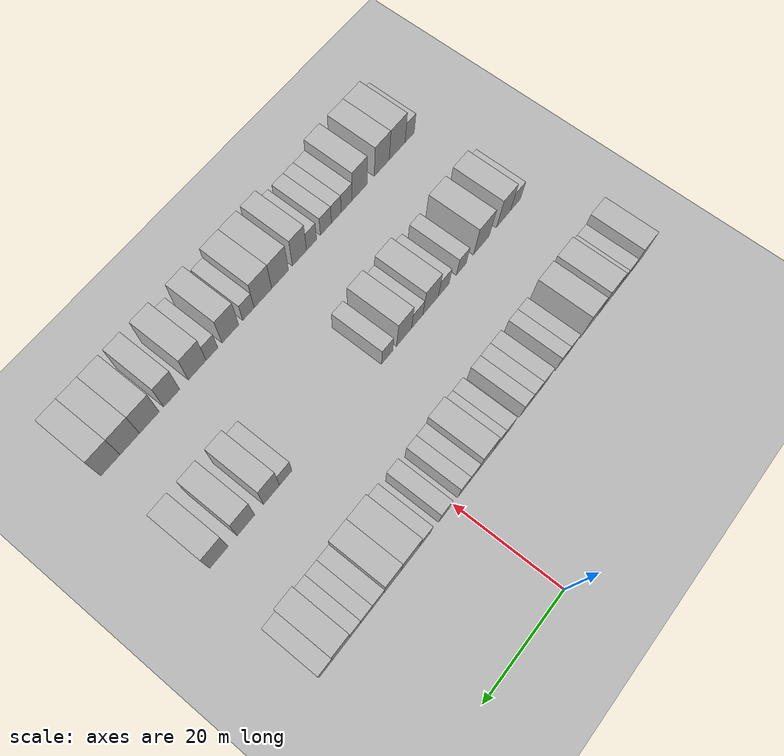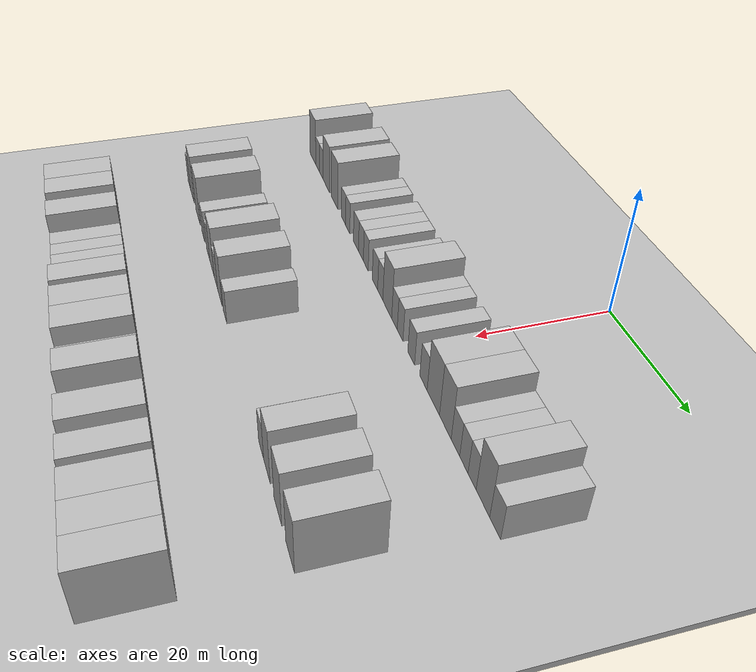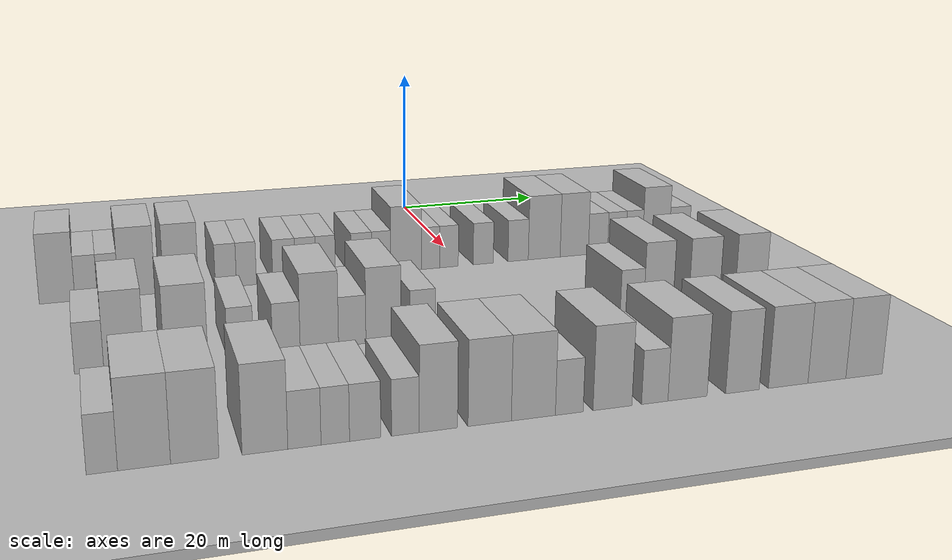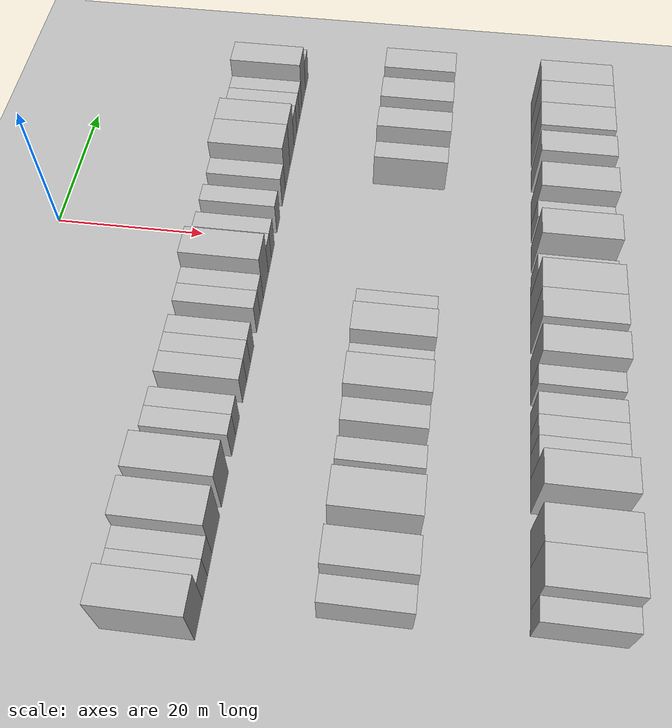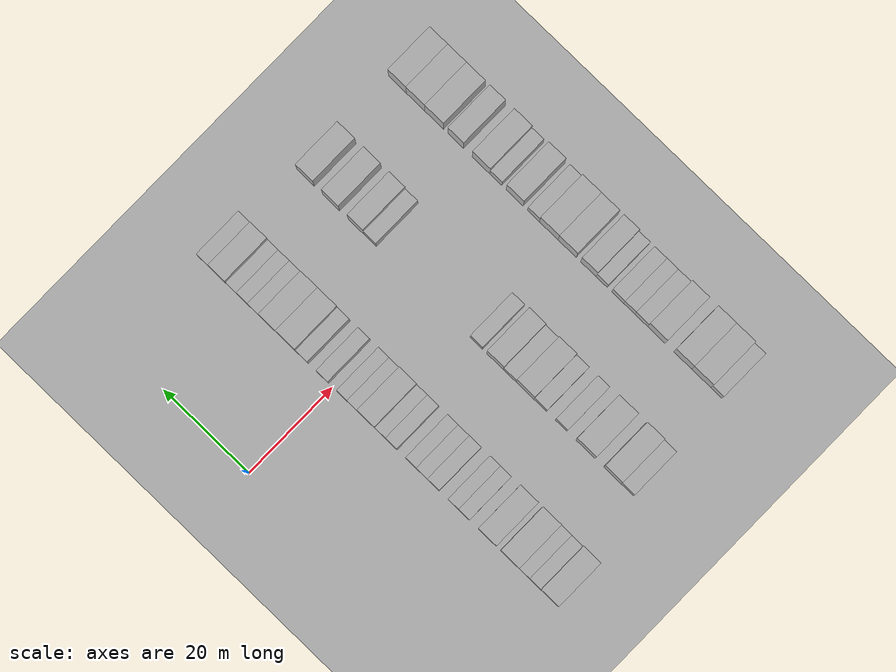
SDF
<sdf version="1.6">
 <world name="default">
  <include><name>ground_plane_1</name><uri>model://HANNAS_ground_plane</uri></include>
  <include>
   <name>ground_plane_2</name>
   <uri>model://HANNAS_ground_plane</uri>
   <pose>100 0 0  0 0 0</pose>
  </include>
  <model name="building_51">
   <static>1</static>
   <pose>25.0000 -50.3097 0 0.000000 0.000000 0.000000</pose>
   <link name="link">
    <pose>0 0 4.50 0 0 0</pose>
    <collision name="collision"><geometry><box><size>10.0000 4.0326 9.0000</size></box></geometry></collision>
    <visual name="visual">
     <cast_shadows>0</cast_shadows>
     <geometry><box><size>10.0000 4.0326 9.0000</size></box></geometry>
     <material>
      <script>
       <uri>model://HANNAS_wall/materials/scripts</uri>
       <uri>model://HANNAS_wall/materials/textures</uri>
       <name>vrc/HANNAS_wall</name>
      </script>
     </material>
    </visual>
   </link>
  </model>
  <model name="building_52">
   <static>1</static>
   <pose>25.0000 -47.0149 0 0.000000 0.000000 0.000000</pose>
   <link name="link">
    <pose>0 0 3.00 0 0 0</pose>
    <collision name="collision"><geometry><box><size>10.0000 2.5572 6.0000</size></box></geometry></collision>
    <visual name="visual">
     <cast_shadows>0</cast_shadows>
     <geometry><box><size>10.0000 2.5572 6.0000</size></box></geometry>
     <material>
      <script>
       <uri>model://HANNAS_wall/materials/scripts</uri>
       <uri>model://HANNAS_wall/materials/textures</uri>
       <name>vrc/HANNAS_wall</name>
      </script>
     </material>
    </visual>
   </link>
  </model>
  <model name="building_53">
   <static>1</static>
   <pose>25.0000 -44.5212 0 0.000000 0.000000 0.000000</pose>
   <link name="link">
    <pose>0 0 3.00 0 0 0</pose>
    <collision name="collision"><geometry><box><size>10.0000 2.4300 6.0000</size></box></geometry></collision>
    <visual name="visual">
     <cast_shadows>0</cast_shadows>
     <geometry><box><size>10.0000 2.4300 6.0000</size></box></geometry>
     <material>
      <script>
       <uri>model://HANNAS_wall/materials/scripts</uri>
       <uri>model://HANNAS_wall/materials/textures</uri>
       <name>vrc/HANNAS_wall</name>
      </script>
     </material>
    </visual>
   </link>
  </model>
  <model name="building_54">
   <static>1</static>
   <pose>25.0000 -41.1703 0 0.000000 0.000000 0.000000</pose>
   <link name="link">
    <pose>0 0 4.50 0 0 0</pose>
    <collision name="collision"><geometry><box><size>10.0000 4.2718 9.0000</size></box></geometry></collision>
    <visual name="visual">
     <cast_shadows>0</cast_shadows>
     <geometry><box><size>10.0000 4.2718 9.0000</size></box></geometry>
     <material>
      <script>
       <uri>model://HANNAS_wall/materials/scripts</uri>
       <uri>model://HANNAS_wall/materials/textures</uri>
       <name>vrc/HANNAS_wall</name>
      </script>
     </material>
    </visual>
   </link>
  </model>
  <model name="building_55">
   <static>1</static>
   <pose>25.0000 -35.9543 0 0.000000 0.000000 0.000000</pose>
   <link name="link">
    <pose>0 0 4.50 0 0 0</pose>
    <collision name="collision"><geometry><box><size>10.0000 4.1602 9.0000</size></box></geometry></collision>
    <visual name="visual">
     <cast_shadows>0</cast_shadows>
     <geometry><box><size>10.0000 4.1602 9.0000</size></box></geometry>
     <material>
      <script>
       <uri>model://HANNAS_wall/materials/scripts</uri>
       <uri>model://HANNAS_wall/materials/textures</uri>
       <name>vrc/HANNAS_wall</name>
      </script>
     </material>
    </visual>
   </link>
  </model>
  <model name="building_56">
   <static>1</static>
   <pose>25.0000 -30.5991 0 0.000000 0.000000 0.000000</pose>
   <link name="link">
    <pose>0 0 3.00 0 0 0</pose>
    <collision name="collision"><geometry><box><size>10.0000 2.5501 6.0000</size></box></geometry></collision>
    <visual name="visual">
     <cast_shadows>0</cast_shadows>
     <geometry><box><size>10.0000 2.5501 6.0000</size></box></geometry>
     <material>
      <script>
       <uri>model://HANNAS_wall/materials/scripts</uri>
       <uri>model://HANNAS_wall/materials/textures</uri>
       <name>vrc/HANNAS_wall</name>
      </script>
     </material>
    </visual>
   </link>
  </model>
  <model name="building_57">
   <static>1</static>
   <pose>25.0000 -28.1071 0 0.000000 0.000000 0.000000</pose>
   <link name="link">
    <pose>0 0 3.00 0 0 0</pose>
    <collision name="collision"><geometry><box><size>10.0000 2.4339 6.0000</size></box></geometry></collision>
    <visual name="visual">
     <cast_shadows>0</cast_shadows>
     <geometry><box><size>10.0000 2.4339 6.0000</size></box></geometry>
     <material>
      <script>
       <uri>model://HANNAS_wall/materials/scripts</uri>
       <uri>model://HANNAS_wall/materials/textures</uri>
       <name>vrc/HANNAS_wall</name>
      </script>
     </material>
    </visual>
   </link>
  </model>
  <model name="building_58">
   <static>1</static>
   <pose>25.0000 -23.5045 0 0.000000 0.000000 0.000000</pose>
   <link name="link">
    <pose>0 0 3.00 0 0 0</pose>
    <collision name="collision"><geometry><box><size>10.0000 2.7713 6.0000</size></box></geometry></collision>
    <visual name="visual">
     <cast_shadows>0</cast_shadows>
     <geometry><box><size>10.0000 2.7713 6.0000</size></box></geometry>
     <material>
      <script>
       <uri>model://HANNAS_wall/materials/scripts</uri>
       <uri>model://HANNAS_wall/materials/textures</uri>
       <name>vrc/HANNAS_wall</name>
      </script>
     </material>
    </visual>
   </link>
  </model>
  <model name="building_59">
   <static>1</static>
   <pose>25.0000 -20.8307 0 0.000000 0.000000 0.000000</pose>
   <link name="link">
    <pose>0 0 3.00 0 0 0</pose>
    <collision name="collision"><geometry><box><size>10.0000 2.5764 6.0000</size></box></geometry></collision>
    <visual name="visual">
     <cast_shadows>0</cast_shadows>
     <geometry><box><size>10.0000 2.5764 6.0000</size></box></geometry>
     <material>
      <script>
       <uri>model://HANNAS_wall/materials/scripts</uri>
       <uri>model://HANNAS_wall/materials/textures</uri>
       <name>vrc/HANNAS_wall</name>
      </script>
     </material>
    </visual>
   </link>
  </model>
  <model name="building_60">
   <static>1</static>
   <pose>25.0000 -18.3024 0 0.000000 0.000000 0.000000</pose>
   <link name="link">
    <pose>0 0 3.00 0 0 0</pose>
    <collision name="collision"><geometry><box><size>10.0000 2.4802 6.0000</size></box></geometry></collision>
    <visual name="visual">
     <cast_shadows>0</cast_shadows>
     <geometry><box><size>10.0000 2.4802 6.0000</size></box></geometry>
     <material>
      <script>
       <uri>model://HANNAS_wall/materials/scripts</uri>
       <uri>model://HANNAS_wall/materials/textures</uri>
       <name>vrc/HANNAS_wall</name>
      </script>
     </material>
    </visual>
   </link>
  </model>
  <model name="building_61">
   <static>1</static>
   <pose>25.0000 -13.7433 0 0.000000 0.000000 0.000000</pose>
   <link name="link">
    <pose>0 0 3.00 0 0 0</pose>
    <collision name="collision"><geometry><box><size>10.0000 2.6382 6.0000</size></box></geometry></collision>
    <visual name="visual">
     <cast_shadows>0</cast_shadows>
     <geometry><box><size>10.0000 2.6382 6.0000</size></box></geometry>
     <material>
      <script>
       <uri>model://HANNAS_wall/materials/scripts</uri>
       <uri>model://HANNAS_wall/materials/textures</uri>
       <name>vrc/HANNAS_wall</name>
      </script>
     </material>
    </visual>
   </link>
  </model>
  <model name="building_62">
   <static>1</static>
   <pose>25.0000 -11.1985 0 0.000000 0.000000 0.000000</pose>
   <link name="link">
    <pose>0 0 3.00 0 0 0</pose>
    <collision name="collision"><geometry><box><size>10.0000 2.4514 6.0000</size></box></geometry></collision>
    <visual name="visual">
     <cast_shadows>0</cast_shadows>
     <geometry><box><size>10.0000 2.4514 6.0000</size></box></geometry>
     <material>
      <script>
       <uri>model://HANNAS_wall/materials/scripts</uri>
       <uri>model://HANNAS_wall/materials/textures</uri>
       <name>vrc/HANNAS_wall</name>
      </script>
     </material>
    </visual>
   </link>
  </model>
  <model name="building_63">
   <static>1</static>
   <pose>25.0000 -7.9587 0 0.000000 0.000000 0.000000</pose>
   <link name="link">
    <pose>0 0 4.50 0 0 0</pose>
    <collision name="collision"><geometry><box><size>10.0000 4.0282 9.0000</size></box></geometry></collision>
    <visual name="visual">
     <cast_shadows>0</cast_shadows>
     <geometry><box><size>10.0000 4.0282 9.0000</size></box></geometry>
     <material>
      <script>
       <uri>model://HANNAS_wall/materials/scripts</uri>
       <uri>model://HANNAS_wall/materials/textures</uri>
       <name>vrc/HANNAS_wall</name>
      </script>
     </material>
    </visual>
   </link>
  </model>
  <model name="building_64">
   <static>1</static>
   <pose>25.0000 -4.7389 0 0.000000 0.000000 0.000000</pose>
   <link name="link">
    <pose>0 0 3.00 0 0 0</pose>
    <collision name="collision"><geometry><box><size>10.0000 2.4114 6.0000</size></box></geometry></collision>
    <visual name="visual">
     <cast_shadows>0</cast_shadows>
     <geometry><box><size>10.0000 2.4114 6.0000</size></box></geometry>
     <material>
      <script>
       <uri>model://HANNAS_wall/materials/scripts</uri>
       <uri>model://HANNAS_wall/materials/textures</uri>
       <name>vrc/HANNAS_wall</name>
      </script>
     </material>
    </visual>
   </link>
  </model>
  <model name="building_65">
   <static>1</static>
   <pose>25.0000 -2.3086 0 0.000000 0.000000 0.000000</pose>
   <link name="link">
    <pose>0 0 3.00 0 0 0</pose>
    <collision name="collision"><geometry><box><size>10.0000 2.4492 6.0000</size></box></geometry></collision>
    <visual name="visual">
     <cast_shadows>0</cast_shadows>
     <geometry><box><size>10.0000 2.4492 6.0000</size></box></geometry>
     <material>
      <script>
       <uri>model://HANNAS_wall/materials/scripts</uri>
       <uri>model://HANNAS_wall/materials/textures</uri>
       <name>vrc/HANNAS_wall</name>
      </script>
     </material>
    </visual>
   </link>
  </model>
  <model name="building_66">
   <static>1</static>
   <pose>25.0000 2.2780 0 0.000000 0.000000 0.000000</pose>
   <link name="link">
    <pose>0 0 3.00 0 0 0</pose>
    <collision name="collision"><geometry><box><size>10.0000 2.7241 6.0000</size></box></geometry></collision>
    <visual name="visual">
     <cast_shadows>0</cast_shadows>
     <geometry><box><size>10.0000 2.7241 6.0000</size></box></geometry>
     <material>
      <script>
       <uri>model://HANNAS_wall/materials/scripts</uri>
       <uri>model://HANNAS_wall/materials/textures</uri>
       <name>vrc/HANNAS_wall</name>
      </script>
     </material>
    </visual>
   </link>
  </model>
  <model name="building_67">
   <static>1</static>
   <pose>25.0000 7.0333 0 0.000000 0.000000 0.000000</pose>
   <link name="link">
    <pose>0 0 3.00 0 0 0</pose>
    <collision name="collision"><geometry><box><size>10.0000 2.7864 6.0000</size></box></geometry></collision>
    <visual name="visual">
     <cast_shadows>0</cast_shadows>
     <geometry><box><size>10.0000 2.7864 6.0000</size></box></geometry>
     <material>
      <script>
       <uri>model://HANNAS_wall/materials/scripts</uri>
       <uri>model://HANNAS_wall/materials/textures</uri>
       <name>vrc/HANNAS_wall</name>
      </script>
     </material>
    </visual>
   </link>
  </model>
  <model name="building_68">
   <static>1</static>
   <pose>25.0000 10.6391 0 0.000000 0.000000 0.000000</pose>
   <link name="link">
    <pose>0 0 4.50 0 0 0</pose>
    <collision name="collision"><geometry><box><size>10.0000 4.4251 9.0000</size></box></geometry></collision>
    <visual name="visual">
     <cast_shadows>0</cast_shadows>
     <geometry><box><size>10.0000 4.4251 9.0000</size></box></geometry>
     <material>
      <script>
       <uri>model://HANNAS_wall/materials/scripts</uri>
       <uri>model://HANNAS_wall/materials/textures</uri>
       <name>vrc/HANNAS_wall</name>
      </script>
     </material>
    </visual>
   </link>
  </model>
  <model name="building_69">
   <static>1</static>
   <pose>25.0000 14.8348 0 0.000000 0.000000 0.000000</pose>
   <link name="link">
    <pose>0 0 4.50 0 0 0</pose>
    <collision name="collision"><geometry><box><size>10.0000 3.9664 9.0000</size></box></geometry></collision>
    <visual name="visual">
     <cast_shadows>0</cast_shadows>
     <geometry><box><size>10.0000 3.9664 9.0000</size></box></geometry>
     <material>
      <script>
       <uri>model://HANNAS_wall/materials/scripts</uri>
       <uri>model://HANNAS_wall/materials/textures</uri>
       <name>vrc/HANNAS_wall</name>
      </script>
     </material>
    </visual>
   </link>
  </model>
  <model name="building_70">
   <static>1</static>
   <pose>25.0000 18.1874 0 0.000000 0.000000 0.000000</pose>
   <link name="link">
    <pose>0 0 3.00 0 0 0</pose>
    <collision name="collision"><geometry><box><size>10.0000 2.7388 6.0000</size></box></geometry></collision>
    <visual name="visual">
     <cast_shadows>0</cast_shadows>
     <geometry><box><size>10.0000 2.7388 6.0000</size></box></geometry>
     <material>
      <script>
       <uri>model://HANNAS_wall/materials/scripts</uri>
       <uri>model://HANNAS_wall/materials/textures</uri>
       <name>vrc/HANNAS_wall</name>
      </script>
     </material>
    </visual>
   </link>
  </model>
  <model name="building_71">
   <static>1</static>
   <pose>25.0000 20.8497 0 0.000000 0.000000 0.000000</pose>
   <link name="link">
    <pose>0 0 3.00 0 0 0</pose>
    <collision name="collision"><geometry><box><size>10.0000 2.5858 6.0000</size></box></geometry></collision>
    <visual name="visual">
     <cast_shadows>0</cast_shadows>
     <geometry><box><size>10.0000 2.5858 6.0000</size></box></geometry>
     <material>
      <script>
       <uri>model://HANNAS_wall/materials/scripts</uri>
       <uri>model://HANNAS_wall/materials/textures</uri>
       <name>vrc/HANNAS_wall</name>
      </script>
     </material>
    </visual>
   </link>
  </model>
  <model name="building_72">
   <static>1</static>
   <pose>25.0000 23.3550 0 0.000000 0.000000 0.000000</pose>
   <link name="link">
    <pose>0 0 3.00 0 0 0</pose>
    <collision name="collision"><geometry><box><size>10.0000 2.4249 6.0000</size></box></geometry></collision>
    <visual name="visual">
     <cast_shadows>0</cast_shadows>
     <geometry><box><size>10.0000 2.4249 6.0000</size></box></geometry>
     <material>
      <script>
       <uri>model://HANNAS_wall/materials/scripts</uri>
       <uri>model://HANNAS_wall/materials/textures</uri>
       <name>vrc/HANNAS_wall</name>
      </script>
     </material>
    </visual>
   </link>
  </model>
  <model name="building_73">
   <static>1</static>
   <pose>25.0000 26.5085 0 0.000000 0.000000 0.000000</pose>
   <link name="link">
    <pose>0 0 4.50 0 0 0</pose>
    <collision name="collision"><geometry><box><size>10.0000 3.8821 9.0000</size></box></geometry></collision>
    <visual name="visual">
     <cast_shadows>0</cast_shadows>
     <geometry><box><size>10.0000 3.8821 9.0000</size></box></geometry>
     <material>
      <script>
       <uri>model://HANNAS_wall/materials/scripts</uri>
       <uri>model://HANNAS_wall/materials/textures</uri>
       <name>vrc/HANNAS_wall</name>
      </script>
     </material>
    </visual>
   </link>
  </model>
  <model name="building_74">
   <static>1</static>
   <pose>25.0000 29.9336 0 0.000000 0.000000 0.000000</pose>
   <link name="link">
    <pose>0 0 3.00 0 0 0</pose>
    <collision name="collision"><geometry><box><size>10.0000 2.9679 6.0000</size></box></geometry></collision>
    <visual name="visual">
     <cast_shadows>0</cast_shadows>
     <geometry><box><size>10.0000 2.9679 6.0000</size></box></geometry>
     <material>
      <script>
       <uri>model://HANNAS_wall/materials/scripts</uri>
       <uri>model://HANNAS_wall/materials/textures</uri>
       <name>vrc/HANNAS_wall</name>
      </script>
     </material>
    </visual>
   </link>
  </model>
  <model name="building_182">
   <static>1</static>
   <pose>47.0000 -47.1529 0 0.000000 0.000000 0.000000</pose>
   <link name="link">
    <pose>0 0 3.00 0 0 0</pose>
    <collision name="collision"><geometry><box><size>10.0000 2.8951 6.0000</size></box></geometry></collision>
    <visual name="visual">
     <cast_shadows>0</cast_shadows>
     <geometry><box><size>10.0000 2.8951 6.0000</size></box></geometry>
     <material>
      <script>
       <uri>model://HANNAS_wall/materials/scripts</uri>
       <uri>model://HANNAS_wall/materials/textures</uri>
       <name>vrc/HANNAS_wall</name>
      </script>
     </material>
    </visual>
   </link>
  </model>
  <model name="building_183">
   <static>1</static>
   <pose>47.0000 -43.6938 0 0.000000 0.000000 0.000000</pose>
   <link name="link">
    <pose>0 0 4.50 0 0 0</pose>
    <collision name="collision"><geometry><box><size>10.0000 4.0230 9.0000</size></box></geometry></collision>
    <visual name="visual">
     <cast_shadows>0</cast_shadows>
     <geometry><box><size>10.0000 4.0230 9.0000</size></box></geometry>
     <material>
      <script>
       <uri>model://HANNAS_wall/materials/scripts</uri>
       <uri>model://HANNAS_wall/materials/textures</uri>
       <name>vrc/HANNAS_wall</name>
      </script>
     </material>
    </visual>
   </link>
  </model>
  <model name="building_184">
   <static>1</static>
   <pose>47.0000 -37.4510 0 0.000000 0.000000 0.000000</pose>
   <link name="link">
    <pose>0 0 4.50 0 0 0</pose>
    <collision name="collision"><geometry><box><size>10.0000 4.4626 9.0000</size></box></geometry></collision>
    <visual name="visual">
     <cast_shadows>0</cast_shadows>
     <geometry><box><size>10.0000 4.4626 9.0000</size></box></geometry>
     <material>
      <script>
       <uri>model://HANNAS_wall/materials/scripts</uri>
       <uri>model://HANNAS_wall/materials/textures</uri>
       <name>vrc/HANNAS_wall</name>
      </script>
     </material>
    </visual>
   </link>
  </model>
  <model name="building_185">
   <static>1</static>
   <pose>47.0000 -31.8492 0 0.000000 0.000000 0.000000</pose>
   <link name="link">
    <pose>0 0 3.00 0 0 0</pose>
    <collision name="collision"><geometry><box><size>10.0000 2.7410 6.0000</size></box></geometry></collision>
    <visual name="visual">
     <cast_shadows>0</cast_shadows>
     <geometry><box><size>10.0000 2.7410 6.0000</size></box></geometry>
     <material>
      <script>
       <uri>model://HANNAS_wall/materials/scripts</uri>
       <uri>model://HANNAS_wall/materials/textures</uri>
       <name>vrc/HANNAS_wall</name>
      </script>
     </material>
    </visual>
   </link>
  </model>
  <model name="building_186">
   <static>1</static>
   <pose>47.0000 -27.0108 0 0.000000 0.000000 0.000000</pose>
   <link name="link">
    <pose>0 0 3.00 0 0 0</pose>
    <collision name="collision"><geometry><box><size>10.0000 2.9359 6.0000</size></box></geometry></collision>
    <visual name="visual">
     <cast_shadows>0</cast_shadows>
     <geometry><box><size>10.0000 2.9359 6.0000</size></box></geometry>
     <material>
      <script>
       <uri>model://HANNAS_wall/materials/scripts</uri>
       <uri>model://HANNAS_wall/materials/textures</uri>
       <name>vrc/HANNAS_wall</name>
      </script>
     </material>
    </visual>
   </link>
  </model>
  <model name="building_187">
   <static>1</static>
   <pose>47.0000 -23.4751 0 0.000000 0.000000 0.000000</pose>
   <link name="link">
    <pose>0 0 4.50 0 0 0</pose>
    <collision name="collision"><geometry><box><size>10.0000 4.1356 9.0000</size></box></geometry></collision>
    <visual name="visual">
     <cast_shadows>0</cast_shadows>
     <geometry><box><size>10.0000 4.1356 9.0000</size></box></geometry>
     <material>
      <script>
       <uri>model://HANNAS_wall/materials/scripts</uri>
       <uri>model://HANNAS_wall/materials/textures</uri>
       <name>vrc/HANNAS_wall</name>
      </script>
     </material>
    </visual>
   </link>
  </model>
  <model name="building_188">
   <static>1</static>
   <pose>47.0000 -19.9073 0 0.000000 0.000000 0.000000</pose>
   <link name="link">
    <pose>0 0 3.00 0 0 0</pose>
    <collision name="collision"><geometry><box><size>10.0000 3.0000 6.0000</size></box></geometry></collision>
    <visual name="visual">
     <cast_shadows>0</cast_shadows>
     <geometry><box><size>10.0000 3.0000 6.0000</size></box></geometry>
     <material>
      <script>
       <uri>model://HANNAS_wall/materials/scripts</uri>
       <uri>model://HANNAS_wall/materials/textures</uri>
       <name>vrc/HANNAS_wall</name>
      </script>
     </material>
    </visual>
   </link>
  </model>
  <model name="building_189">
   <static>1</static>
   <pose>47.0000 -16.4712 0 0.000000 0.000000 0.000000</pose>
   <link name="link">
    <pose>0 0 4.50 0 0 0</pose>
    <collision name="collision"><geometry><box><size>10.0000 3.8722 9.0000</size></box></geometry></collision>
    <visual name="visual">
     <cast_shadows>0</cast_shadows>
     <geometry><box><size>10.0000 3.8722 9.0000</size></box></geometry>
     <material>
      <script>
       <uri>model://HANNAS_wall/materials/scripts</uri>
       <uri>model://HANNAS_wall/materials/textures</uri>
       <name>vrc/HANNAS_wall</name>
      </script>
     </material>
    </visual>
   </link>
  </model>
  <model name="building_190">
   <static>1</static>
   <pose>47.0000 -12.1024 0 0.000000 0.000000 0.000000</pose>
   <link name="link">
    <pose>0 0 3.00 0 0 0</pose>
    <collision name="collision"><geometry><box><size>10.0000 2.8652 6.0000</size></box></geometry></collision>
    <visual name="visual">
     <cast_shadows>0</cast_shadows>
     <geometry><box><size>10.0000 2.8652 6.0000</size></box></geometry>
     <material>
      <script>
       <uri>model://HANNAS_wall/materials/scripts</uri>
       <uri>model://HANNAS_wall/materials/textures</uri>
       <name>vrc/HANNAS_wall</name>
      </script>
     </material>
    </visual>
   </link>
  </model>
  <model name="building_191">
   <static>1</static>
   <pose>47.0000 12.6779 0 0.000000 0.000000 0.000000</pose>
   <link name="link">
    <pose>0 0 3.00 0 0 0</pose>
    <collision name="collision"><geometry><box><size>10.0000 2.8985 6.0000</size></box></geometry></collision>
    <visual name="visual">
     <cast_shadows>0</cast_shadows>
     <geometry><box><size>10.0000 2.8985 6.0000</size></box></geometry>
     <material>
      <script>
       <uri>model://HANNAS_wall/materials/scripts</uri>
       <uri>model://HANNAS_wall/materials/textures</uri>
       <name>vrc/HANNAS_wall</name>
      </script>
     </material>
    </visual>
   </link>
  </model>
  <model name="building_192">
   <static>1</static>
   <pose>47.0000 15.9641 0 0.000000 0.000000 0.000000</pose>
   <link name="link">
    <pose>0 0 4.50 0 0 0</pose>
    <collision name="collision"><geometry><box><size>10.0000 3.6740 9.0000</size></box></geometry></collision>
    <visual name="visual">
     <cast_shadows>0</cast_shadows>
     <geometry><box><size>10.0000 3.6740 9.0000</size></box></geometry>
     <material>
      <script>
       <uri>model://HANNAS_wall/materials/scripts</uri>
       <uri>model://HANNAS_wall/materials/textures</uri>
       <name>vrc/HANNAS_wall</name>
      </script>
     </material>
    </visual>
   </link>
  </model>
  <model name="building_193">
   <static>1</static>
   <pose>47.0000 21.7699 0 0.000000 0.000000 0.000000</pose>
   <link name="link">
    <pose>0 0 4.50 0 0 0</pose>
    <collision name="collision"><geometry><box><size>10.0000 3.9375 9.0000</size></box></geometry></collision>
    <visual name="visual">
     <cast_shadows>0</cast_shadows>
     <geometry><box><size>10.0000 3.9375 9.0000</size></box></geometry>
     <material>
      <script>
       <uri>model://HANNAS_wall/materials/scripts</uri>
       <uri>model://HANNAS_wall/materials/textures</uri>
       <name>vrc/HANNAS_wall</name>
      </script>
     </material>
    </visual>
   </link>
  </model>
  <model name="building_194">
   <static>1</static>
   <pose>47.0000 27.7640 0 0.000000 0.000000 0.000000</pose>
   <link name="link">
    <pose>0 0 4.50 0 0 0</pose>
    <collision name="collision"><geometry><box><size>10.0000 4.0508 9.0000</size></box></geometry></collision>
    <visual name="visual">
     <cast_shadows>0</cast_shadows>
     <geometry><box><size>10.0000 4.0508 9.0000</size></box></geometry>
     <material>
      <script>
       <uri>model://HANNAS_wall/materials/scripts</uri>
       <uri>model://HANNAS_wall/materials/textures</uri>
       <name>vrc/HANNAS_wall</name>
      </script>
     </material>
    </visual>
   </link>
  </model>
  <model name="building_297">
   <static>1</static>
   <pose>69.0000 -46.5915 0 0.000000 0.000000 0.000000</pose>
   <link name="link">
    <pose>0 0 3.00 0 0 0</pose>
    <collision name="collision"><geometry><box><size>10.0000 2.5864 6.0000</size></box></geometry></collision>
    <visual name="visual">
     <cast_shadows>0</cast_shadows>
     <geometry><box><size>10.0000 2.5864 6.0000</size></box></geometry>
     <material>
      <script>
       <uri>model://HANNAS_wall/materials/scripts</uri>
       <uri>model://HANNAS_wall/materials/textures</uri>
       <name>vrc/HANNAS_wall</name>
      </script>
     </material>
    </visual>
   </link>
  </model>
  <model name="building_298">
   <static>1</static>
   <pose>69.0000 -43.0797 0 0.000000 0.000000 0.000000</pose>
   <link name="link">
    <pose>0 0 4.50 0 0 0</pose>
    <collision name="collision"><geometry><box><size>10.0000 4.4372 9.0000</size></box></geometry></collision>
    <visual name="visual">
     <cast_shadows>0</cast_shadows>
     <geometry><box><size>10.0000 4.4372 9.0000</size></box></geometry>
     <material>
      <script>
       <uri>model://HANNAS_wall/materials/scripts</uri>
       <uri>model://HANNAS_wall/materials/textures</uri>
       <name>vrc/HANNAS_wall</name>
      </script>
     </material>
    </visual>
   </link>
  </model>
  <model name="building_299">
   <static>1</static>
   <pose>69.0000 -38.7917 0 0.000000 0.000000 0.000000</pose>
   <link name="link">
    <pose>0 0 4.50 0 0 0</pose>
    <collision name="collision"><geometry><box><size>10.0000 4.1389 9.0000</size></box></geometry></collision>
    <visual name="visual">
     <cast_shadows>0</cast_shadows>
     <geometry><box><size>10.0000 4.1389 9.0000</size></box></geometry>
     <material>
      <script>
       <uri>model://HANNAS_wall/materials/scripts</uri>
       <uri>model://HANNAS_wall/materials/textures</uri>
       <name>vrc/HANNAS_wall</name>
      </script>
     </material>
    </visual>
   </link>
  </model>
  <model name="building_300">
   <static>1</static>
   <pose>69.0000 -32.7095 0 0.000000 0.000000 0.000000</pose>
   <link name="link">
    <pose>0 0 4.50 0 0 0</pose>
    <collision name="collision"><geometry><box><size>10.0000 4.0255 9.0000</size></box></geometry></collision>
    <visual name="visual">
     <cast_shadows>0</cast_shadows>
     <geometry><box><size>10.0000 4.0255 9.0000</size></box></geometry>
     <material>
      <script>
       <uri>model://HANNAS_wall/materials/scripts</uri>
       <uri>model://HANNAS_wall/materials/textures</uri>
       <name>vrc/HANNAS_wall</name>
      </script>
     </material>
    </visual>
   </link>
  </model>
  <model name="building_301">
   <static>1</static>
   <pose>69.0000 -29.2114 0 0.000000 0.000000 0.000000</pose>
   <link name="link">
    <pose>0 0 3.00 0 0 0</pose>
    <collision name="collision"><geometry><box><size>10.0000 2.9707 6.0000</size></box></geometry></collision>
    <visual name="visual">
     <cast_shadows>0</cast_shadows>
     <geometry><box><size>10.0000 2.9707 6.0000</size></box></geometry>
     <material>
      <script>
       <uri>model://HANNAS_wall/materials/scripts</uri>
       <uri>model://HANNAS_wall/materials/textures</uri>
       <name>vrc/HANNAS_wall</name>
      </script>
     </material>
    </visual>
   </link>
  </model>
  <model name="building_302">
   <static>1</static>
   <pose>69.0000 -26.4335 0 0.000000 0.000000 0.000000</pose>
   <link name="link">
    <pose>0 0 3.00 0 0 0</pose>
    <collision name="collision"><geometry><box><size>10.0000 2.5851 6.0000</size></box></geometry></collision>
    <visual name="visual">
     <cast_shadows>0</cast_shadows>
     <geometry><box><size>10.0000 2.5851 6.0000</size></box></geometry>
     <material>
      <script>
       <uri>model://HANNAS_wall/materials/scripts</uri>
       <uri>model://HANNAS_wall/materials/textures</uri>
       <name>vrc/HANNAS_wall</name>
      </script>
     </material>
    </visual>
   </link>
  </model>
  <model name="building_303">
   <static>1</static>
   <pose>69.0000 -23.7086 0 0.000000 0.000000 0.000000</pose>
   <link name="link">
    <pose>0 0 3.00 0 0 0</pose>
    <collision name="collision"><geometry><box><size>10.0000 2.8647 6.0000</size></box></geometry></collision>
    <visual name="visual">
     <cast_shadows>0</cast_shadows>
     <geometry><box><size>10.0000 2.8647 6.0000</size></box></geometry>
     <material>
      <script>
       <uri>model://HANNAS_wall/materials/scripts</uri>
       <uri>model://HANNAS_wall/materials/textures</uri>
       <name>vrc/HANNAS_wall</name>
      </script>
     </material>
    </visual>
   </link>
  </model>
  <model name="building_304">
   <static>1</static>
   <pose>69.0000 -19.9755 0 0.000000 0.000000 0.000000</pose>
   <link name="link">
    <pose>0 0 3.00 0 0 0</pose>
    <collision name="collision"><geometry><box><size>10.0000 2.6016 6.0000</size></box></geometry></collision>
    <visual name="visual">
     <cast_shadows>0</cast_shadows>
     <geometry><box><size>10.0000 2.6016 6.0000</size></box></geometry>
     <material>
      <script>
       <uri>model://HANNAS_wall/materials/scripts</uri>
       <uri>model://HANNAS_wall/materials/textures</uri>
       <name>vrc/HANNAS_wall</name>
      </script>
     </material>
    </visual>
   </link>
  </model>
  <model name="building_305">
   <static>1</static>
   <pose>69.0000 -16.8618 0 0.000000 0.000000 0.000000</pose>
   <link name="link">
    <pose>0 0 4.50 0 0 0</pose>
    <collision name="collision"><geometry><box><size>10.0000 3.6258 9.0000</size></box></geometry></collision>
    <visual name="visual">
     <cast_shadows>0</cast_shadows>
     <geometry><box><size>10.0000 3.6258 9.0000</size></box></geometry>
     <material>
      <script>
       <uri>model://HANNAS_wall/materials/scripts</uri>
       <uri>model://HANNAS_wall/materials/textures</uri>
       <name>vrc/HANNAS_wall</name>
      </script>
     </material>
    </visual>
   </link>
  </model>
  <model name="building_306">
   <static>1</static>
   <pose>69.0000 -11.9436 0 0.000000 0.000000 0.000000</pose>
   <link name="link">
    <pose>0 0 4.50 0 0 0</pose>
    <collision name="collision"><geometry><box><size>10.0000 4.2104 9.0000</size></box></geometry></collision>
    <visual name="visual">
     <cast_shadows>0</cast_shadows>
     <geometry><box><size>10.0000 4.2104 9.0000</size></box></geometry>
     <material>
      <script>
       <uri>model://HANNAS_wall/materials/scripts</uri>
       <uri>model://HANNAS_wall/materials/textures</uri>
       <name>vrc/HANNAS_wall</name>
      </script>
     </material>
    </visual>
   </link>
  </model>
  <model name="building_307">
   <static>1</static>
   <pose>69.0000 -7.6569 0 0.000000 0.000000 0.000000</pose>
   <link name="link">
    <pose>0 0 4.50 0 0 0</pose>
    <collision name="collision"><geometry><box><size>10.0000 4.3631 9.0000</size></box></geometry></collision>
    <visual name="visual">
     <cast_shadows>0</cast_shadows>
     <geometry><box><size>10.0000 4.3631 9.0000</size></box></geometry>
     <material>
      <script>
       <uri>model://HANNAS_wall/materials/scripts</uri>
       <uri>model://HANNAS_wall/materials/textures</uri>
       <name>vrc/HANNAS_wall</name>
      </script>
     </material>
    </visual>
   </link>
  </model>
  <model name="building_308">
   <static>1</static>
   <pose>69.0000 -4.0792 0 0.000000 0.000000 0.000000</pose>
   <link name="link">
    <pose>0 0 3.00 0 0 0</pose>
    <collision name="collision"><geometry><box><size>10.0000 2.7924 6.0000</size></box></geometry></collision>
    <visual name="visual">
     <cast_shadows>0</cast_shadows>
     <geometry><box><size>10.0000 2.7924 6.0000</size></box></geometry>
     <material>
      <script>
       <uri>model://HANNAS_wall/materials/scripts</uri>
       <uri>model://HANNAS_wall/materials/textures</uri>
       <name>vrc/HANNAS_wall</name>
      </script>
     </material>
    </visual>
   </link>
  </model>
  <model name="building_309">
   <static>1</static>
   <pose>69.0000 0.3165 0 0.000000 0.000000 0.000000</pose>
   <link name="link">
    <pose>0 0 4.50 0 0 0</pose>
    <collision name="collision"><geometry><box><size>10.0000 3.9989 9.0000</size></box></geometry></collision>
    <visual name="visual">
     <cast_shadows>0</cast_shadows>
     <geometry><box><size>10.0000 3.9989 9.0000</size></box></geometry>
     <material>
      <script>
       <uri>model://HANNAS_wall/materials/scripts</uri>
       <uri>model://HANNAS_wall/materials/textures</uri>
       <name>vrc/HANNAS_wall</name>
      </script>
     </material>
    </visual>
   </link>
  </model>
  <model name="building_310">
   <static>1</static>
   <pose>69.0000 4.6959 0 0.000000 0.000000 0.000000</pose>
   <link name="link">
    <pose>0 0 3.00 0 0 0</pose>
    <collision name="collision"><geometry><box><size>10.0000 2.7600 6.0000</size></box></geometry></collision>
    <visual name="visual">
     <cast_shadows>0</cast_shadows>
     <geometry><box><size>10.0000 2.7600 6.0000</size></box></geometry>
     <material>
      <script>
       <uri>model://HANNAS_wall/materials/scripts</uri>
       <uri>model://HANNAS_wall/materials/textures</uri>
       <name>vrc/HANNAS_wall</name>
      </script>
     </material>
    </visual>
   </link>
  </model>
  <model name="building_311">
   <static>1</static>
   <pose>69.0000 8.1622 0 0.000000 0.000000 0.000000</pose>
   <link name="link">
    <pose>0 0 4.50 0 0 0</pose>
    <collision name="collision"><geometry><box><size>10.0000 4.1726 9.0000</size></box></geometry></collision>
    <visual name="visual">
     <cast_shadows>0</cast_shadows>
     <geometry><box><size>10.0000 4.1726 9.0000</size></box></geometry>
     <material>
      <script>
       <uri>model://HANNAS_wall/materials/scripts</uri>
       <uri>model://HANNAS_wall/materials/textures</uri>
       <name>vrc/HANNAS_wall</name>
      </script>
     </material>
    </visual>
   </link>
  </model>
  <model name="building_312">
   <static>1</static>
   <pose>69.0000 14.0821 0 0.000000 0.000000 0.000000</pose>
   <link name="link">
    <pose>0 0 4.50 0 0 0</pose>
    <collision name="collision"><geometry><box><size>10.0000 3.6672 9.0000</size></box></geometry></collision>
    <visual name="visual">
     <cast_shadows>0</cast_shadows>
     <geometry><box><size>10.0000 3.6672 9.0000</size></box></geometry>
     <material>
      <script>
       <uri>model://HANNAS_wall/materials/scripts</uri>
       <uri>model://HANNAS_wall/materials/textures</uri>
       <name>vrc/HANNAS_wall</name>
      </script>
     </material>
    </visual>
   </link>
  </model>
  <model name="building_313">
   <static>1</static>
   <pose>69.0000 19.1199 0 0.000000 0.000000 0.000000</pose>
   <link name="link">
    <pose>0 0 4.50 0 0 0</pose>
    <collision name="collision"><geometry><box><size>10.0000 4.4084 9.0000</size></box></geometry></collision>
    <visual name="visual">
     <cast_shadows>0</cast_shadows>
     <geometry><box><size>10.0000 4.4084 9.0000</size></box></geometry>
     <material>
      <script>
       <uri>model://HANNAS_wall/materials/scripts</uri>
       <uri>model://HANNAS_wall/materials/textures</uri>
       <name>vrc/HANNAS_wall</name>
      </script>
     </material>
    </visual>
   </link>
  </model>
  <model name="building_314">
   <static>1</static>
   <pose>69.0000 23.4806 0 0.000000 0.000000 0.000000</pose>
   <link name="link">
    <pose>0 0 4.50 0 0 0</pose>
    <collision name="collision"><geometry><box><size>10.0000 4.3130 9.0000</size></box></geometry></collision>
    <visual name="visual">
     <cast_shadows>0</cast_shadows>
     <geometry><box><size>10.0000 4.3130 9.0000</size></box></geometry>
     <material>
      <script>
       <uri>model://HANNAS_wall/materials/scripts</uri>
       <uri>model://HANNAS_wall/materials/textures</uri>
       <name>vrc/HANNAS_wall</name>
      </script>
     </material>
    </visual>
   </link>
  </model>
  <model name="building_315">
   <static>1</static>
   <pose>69.0000 27.7359 0 0.000000 0.000000 0.000000</pose>
   <link name="link">
    <pose>0 0 4.50 0 0 0</pose>
    <collision name="collision"><geometry><box><size>10.0000 4.1976 9.0000</size></box></geometry></collision>
    <visual name="visual">
     <cast_shadows>0</cast_shadows>
     <geometry><box><size>10.0000 4.1976 9.0000</size></box></geometry>
     <material>
      <script>
       <uri>model://HANNAS_wall/materials/scripts</uri>
       <uri>model://HANNAS_wall/materials/textures</uri>
       <name>vrc/HANNAS_wall</name>
      </script>
     </material>
    </visual>
   </link>
  </model>
 </world>
</sdf>
